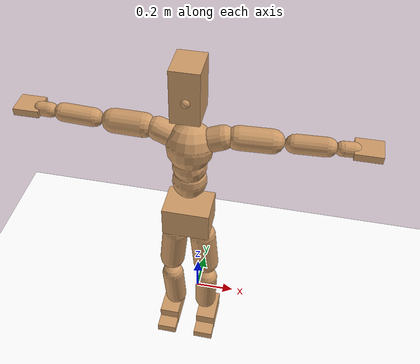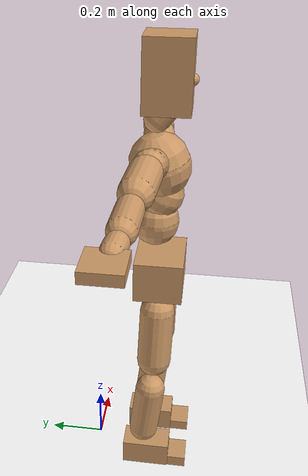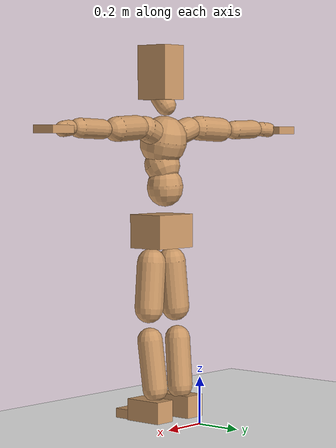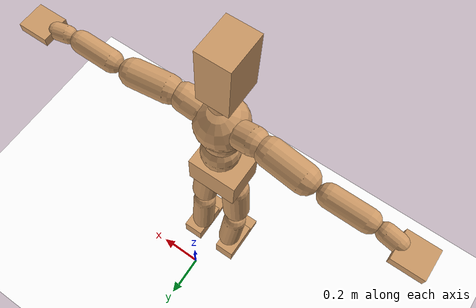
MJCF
<mujoco model="humanoid">
  <option integrator="implicitfast" />

  <visual>
    <global offwidth="1280" offheight="960" />
    <headlight active="1" ambient="0.34 0.34 0.34" diffuse="0.5 0.5 0.5" />
  </visual>

  <default>
    <joint damping="2" stiffness="2" armature="0.01" limited="true" solimplimit="0 .99 .01" />
    <geom condim="1" friction="0.7 0.005 0.0001" solimp=".99 .99 .003" solref="0.015 1" margin="0.001" rgba="0.8 0.6 .4 1" />
    <default class="smplcontact">
      <geom condim="3" friction="1. 0.005 0.0001" solref="0.015 1" solimp="0.98 0.98 0.001" priority="1" />
    </default>
    <default class="stiff_medium">
      <joint stiffness="10" />
    </default>
    <default class="stiff_medium_higher">
      <joint stiffness="50" />
    </default>
    <default class="stiff_high">
      <joint stiffness="100" />
    </default>
  </default>

  <asset>
    <texture type="skybox" builtin="gradient" rgb1="0.99 0.99 0.99" rgb2="0.608 0.828 0.892" width="100" />
    <texture builtin="flat" height="1278" mark="cross" markrgb="1 1 1" name="texgeom" random="0.01" rgb1="0.8 0.6 0.4" rgb2="0.8 0.6 0.4" type="cube" width="127" />
    <texture name="texplane" type="2d" builtin="checker" markrgb="1 1 1" rgb1="0.756 0.772 0.76" rgb2="0.6 0.6 0.6" width="100" height="100" />
    <material name="MatPlane" reflectance="0.5" texture="texplane" texrepeat="1 1" texuniform="true" />
    <material name="geom" texture="texgeom" texuniform="true" />
  </asset>

  <worldbody>
    <light name="tracking_light" pos="0 0 7" dir="0 0 -1" directional="true" cutoff="100" exponent="1" diffuse="1 1 1" specular="0.1 0.1 0.1" mode="trackcom" />
    <camera name="back" pos="0 3 2.4" xyaxes="-1 0 0 0 -1 2" mode="trackcom" />
    <camera name="side" pos="-3 0 2.4" xyaxes="0 -1 0 1 0 2" mode="trackcom" />
    <camera name="front_side" pos="-2.8 -2.8 0.8" xyaxes="0.5 -0.5 0 0.1 0.1 1" mode="trackcom" />
    <geom condim="3" name="floor" pos="0 0 0" rgba="1 1 1 1" size="100 100 .2" type="plane" material="MatPlane" />
    <body name="Pelvis" pos="-0.0018 -0.2233 0.820076" euler="90 0 0">
      <site name="Pelvis" size="0.01" />
      <freejoint name="Pelvis" />
      <geom type="box" pos="-0.0000 -0.0121 -0.0055" size="0.1069 0.0722 0.083" quat="1.0000 0.0000 0.0000 0.0000" density="3165.830099" name="Pelvis" />
      <body name="L_Hip" pos="0.0603816 -0.0794083 -0.00590784">
        <joint name="L_Hip_x" type="hinge" pos="0 0 0" axis="1 0 0" stiffness="7.9257274489795915" range="-160.0 22.92" class="stiff_medium" damping="11.194933109876" armature="0.007027831725723564"/>
        <joint name="L_Hip_y" type="hinge" pos="0 0 0" axis="0 1 0" stiffness="7.948422040816326" range="-70.0 70.0" class="stiff_medium" damping="8.124462947868727" armature="0.008304402792445667"/>
        <joint name="L_Hip_z" type="hinge" pos="0 0 0" axis="0 0 1" stiffness="7.946478979591838" range="-28.65 90.0" class="stiff_medium" damping="7.472027083466815" armature="0.007025902777751929"/>
        <geom type="capsule" density="2040.816327" fromto="0.00599472 -0.06516 -0.00078192 0.0238051 -0.260814 -0.00312768" size="0.0615" name="L_Hip" />
        <body name="L_Knee" pos="0.0297998 -0.325974 -0.0039096">
          <joint name="L_Knee_x" type="hinge" pos="0 0 0" axis="1 0 0" range="-5.16 171.89" damping="6.104279376796089" armature="0.007227308350447203" stiffness="1.6111732448979592"/>
          <joint name="L_Knee_y" type="hinge" pos="0 0 0" axis="0 1 0" range="-4.58 6.88" damping="6.602083903134402" armature="0.008535979043657613" stiffness="1.5957276122448976"/>
          <joint name="L_Knee_z" type="hinge" pos="0 0 0" axis="0 0 1" range="-6.88 4.58" damping="6.113074394979376" armature="0.007217627063150271" stiffness="1.617986693877551"/>
          <geom type="capsule" density="1234.567901" fromto="-0.00234576 -0.0691565 -0.00755856 -0.00946992 -0.276626 -0.030408" size="0.0541" name="L_Knee" />
          <body name="L_Ankle" pos="-0.0118157 -0.345782 -0.0379666">
            <joint name="L_Ankle_x" type="hinge" pos="0 0 0" axis="1 0 0" range="-45.84 45.84" class="stiff_medium" damping="5.121809844065085" armature="0.00838734123727994" stiffness="8.688005510204082"/>
            <joint name="L_Ankle_y" type="hinge" pos="0 0 0" axis="0 1 0" range="-74.48 22.92" class="stiff_medium" damping="2.5700474746041873" armature="0.008447336635025546" stiffness="8.688003367346939"/>
            <joint name="L_Ankle_z" type="hinge" pos="0 0 0" axis="0 0 1" range="-4.58 4.58" class="stiff_medium" damping="5.258228048533042" armature="0.00884008914086187" stiffness="8.687997551020409"/>
            <geom type="box" pos="0.020243 -0.0207643 0.021025" size="0.0483 0.0464 0.085" quat="1.0000 0.0000 0.0000 0.0000" density="449.071558" name="L_Ankle" class="smplcontact" />
            <body name="L_Toe" pos="0.0229363 -0.048479 0.103648">
              <joint name="L_Toe_x" type="hinge" pos="0 0 0" axis="1 0 0" range="-91.67 22.92" armature="0.009067830202276462" damping="1.7751767308970168" stiffness="1.7376000408163264"/>
              <joint name="L_Toe_y" type="hinge" pos="0 0 0" axis="0 1 0" range="-4.58 4.58" armature="0.009343211053933303" damping="1.8019303461598588" stiffness="1.7376001428571428"/>
              <joint name="L_Toe_z" type="hinge" pos="0 0 0" axis="0 0 1" range="-4.58 4.58" armature="0.009900016536699459" damping="1.8548460170142955" stiffness="1.7376000000000003"/>
              <geom type="box" pos="-0.0026064 0.0047784 0.0215462" size="0.0478 0.02 0.0496" quat="1.0000 0.0000 0.0000 0.0000" density="423.206892" name="L_Toe" class="smplcontact" />
            </body>
          </body>
        </body>
      </body>
      <body name="R_Hip" pos="-0.0588178 -0.0786264 -0.00373584">
        <joint name="R_Hip_x" type="hinge" pos="0 0 0" axis="1 0 0" stiffness="7.9257274489795915" range="-160.0 22.92" class="stiff_medium" damping="11.194933109876" armature="0.007027831725723564"/>
        <joint name="R_Hip_y" type="hinge" pos="0 0 0" axis="0 1 0" stiffness="7.948422040816326" range="-70.0 70.0" class="stiff_medium" damping="8.124462947868727" armature="0.008304402792445667"/>
        <joint name="R_Hip_z" type="hinge" pos="0 0 0" axis="0 0 1" stiffness="7.946478979591838" range="-90.0 28.65" class="stiff_medium" damping="7.472027083466815" armature="0.007025902777751929"/>
        <geom type="capsule" density="2040.816327" fromto="-0.00668976 -0.0664632 -0.00156384 -0.0265853 -0.26594 -0.00616848" size="0.0606" name="R_Hip" />
        <body name="R_Knee" pos="-0.033275 -0.332403 -0.00773232">
          <joint name="R_Knee_x" type="hinge" pos="0 0 0" axis="1 0 0" range="-5.16 171.89" damping="6.104279376796089" armature="0.007227308350447203" stiffness="1.6111732448979592"/>
          <joint name="R_Knee_y" type="hinge" pos="0 0 0" axis="0 1 0" range="-6.88 4.58" damping="6.602083903134402" armature="0.008535979043657613" stiffness="1.5957276122448976"/>
          <joint name="R_Knee_z" type="hinge" pos="0 0 0" axis="0 0 1" range="-4.58 6.88" damping="6.113074394979376" armature="0.007217627063150271" stiffness="1.617986693877551"/>
          <geom type="capsule" density="1234.567901" fromto="0.00278016 -0.0692434 -0.0073848 0.0109469 -0.276887 -0.0293654" size="0.0541" name="R_Knee" />
          <body name="R_Ankle" pos="0.013727 -0.34613 -0.0367502">
            <joint name="R_Ankle_x" type="hinge" pos="0 0 0" axis="1 0 0" range="-45.84 45.84" class="stiff_medium" damping="5.121809844065085" armature="0.00838734123727994" stiffness="8.688005510204082"/>
            <joint name="R_Ankle_y" type="hinge" pos="0 0 0" axis="0 1 0" range="-22.92 74.48" class="stiff_medium" damping="2.5700474746041873" armature="0.008447336635025546" stiffness="8.688003367346939"/>
            <joint name="R_Ankle_z" type="hinge" pos="0 0 0" axis="0 0 1" range="-4.58 4.58" class="stiff_medium" damping="5.258228048533042" armature="0.00884008914086187" stiffness="8.687997551020409"/>
            <geom type="box" pos="-0.0184186 -0.0151171 0.0222413" size="0.0483 0.0478 0.0865" quat="1.0000 0.0000 0.0000 0.0000" density="434.700981" name="R_Ankle" class="smplcontact" />
            <body name="R_Toe" pos="-0.0220675 -0.0417893 0.107123">
              <joint name="R_Toe_x" type="hinge" pos="0 0 0" axis="1 0 0" range="-91.67 22.92" armature="0.009067830202276462" damping="1.7751767308970168" stiffness="1.7376000408163264"/>
              <joint name="R_Toe_y" type="hinge" pos="0 0 0" axis="0 1 0" range="-4.58 4.58" armature="0.009343211053933303" damping="1.8019303461598588" stiffness="1.7376001428571428"/>
              <joint name="R_Toe_z" type="hinge" pos="0 0 0" axis="0 0 1" range="-4.58 4.58" armature="0.009900016536699459" damping="1.8548460170142955" stiffness="1.7376000000000003"/>
              <geom type="box" pos="0.00364896 0.0039096 0.0197218" size="0.0479 0.0216 0.0493" quat="1.0000 0.0000 0.0000 0.0000" density="407.384095" name="R_Toe" class="smplcontact" />
            </body>
          </body>
        </body>
      </body>
      <body name="Torso" pos="-0.0025 0.109 -0.0267">
        <joint name="Torso_x" type="hinge" pos="0 0 0" axis="1 0 0" range="-25.78 57.3" class="stiff_medium" damping="14.338223428883952" armature="0.009488836912503304" stiffness="9.629310408163265"/>
        <joint name="Torso_y" type="hinge" pos="0 0 0" axis="0 1 0" range="-57.3 57.3" class="stiff_high" damping="16.858804586105343" armature="0.007339579075137647" stiffness="96.81048775510205"/>
        <joint name="Torso_z" type="hinge" pos="0 0 0" axis="0 0 1" range="-34.38 34.38" class="stiff_high" damping="18.475676911789126" armature="0.008754075467091468" stiffness="97.4833489361702"/>
        <geom type="capsule" density="2040.816327" fromto="0.0025 0.0608 0.0005 0.003 0.0743 0.0006" size="0.0769" name="Torso" />
        <body name="Spine" pos="0.0055 0.1352 0.0011">
          <joint name="Spine_x" type="hinge" pos="0 0 0" axis="1 0 0" stiffness="9.559158979591837" range="-25.78 57.3" class="stiff_medium" damping="14.223612967909089" armature="0.0094062745381584"/>
          <joint name="Spine_y" type="hinge" pos="0 0 0" axis="0 1 0" stiffness="9.549693265306123" range="-57.3 57.3" class="stiff_high" damping="6.68911891177774" armature="0.007320966786057995"/>
          <joint name="Spine_z" type="hinge" pos="0 0 0" axis="0 0 1" stiffness="18.948488163265306" range="-34.38 34.38" class="stiff_high" damping="10.608262056788341" armature="0.008248622301087884"/>
          <geom type="capsule" density="2040.816327" fromto="0.0007 0.0238 0.0114 0.0008 0.0291 0.014" size="0.0755" name="Spine" />
          <body name="Chest" pos="0.0015 0.0529 0.0254">
            <joint name="Chest_x" type="hinge" pos="0 0 0" axis="1 0 0" stiffness="9.380547291666666" range="-25.78 57.3" class="stiff_medium" damping="14.055977791143933" armature="0.009360766868434253"/>
            <joint name="Chest_y" type="hinge" pos="0 0 0" axis="0 1 0" stiffness="8.848325" range="-57.3 57.3" class="stiff_high" damping="6.435989029455116" armature="0.00731458263062264"/>
            <joint name="Chest_z" type="hinge" pos="0 0 0" axis="0 0 1" stiffness="18.89043632653061" range="-34.38 34.38" class="stiff_high" damping="10.449236878664882" armature="0.008027765233151303"/>
            <geom type="capsule" density="2040.816327" fromto="-0.0009 0.0682 -0.0173 -0.001 0.0833 -0.0212" size="0.1002" name="Chest" />
            <body name="Neck" pos="-0.0028 0.2139 -0.0429">
              <joint name="Neck_x" type="hinge" pos="0 0 0" axis="1 0 0" range="-28.65 57.3" class="stiff_medium_higher" damping="10.000000000000004" armature="0.010000000000000009" stiffness="50.0"/>
              <joint name="Neck_y" type="hinge" pos="0 0 0" axis="0 1 0" range="-40.11 40.11" class="stiff_medium_higher" damping="10.0" armature="0.010000000000000002" stiffness="50.0"/>
              <joint name="Neck_z" type="hinge" pos="0 0 0" axis="0 0 1" range="-40.11 40.11" class="stiff_medium_higher" damping="9.999999999999996" armature="0.009999999999999992" stiffness="50.0"/>
              <geom type="capsule" density="1000" fromto="0.001 0.013 0.0103 0.0041 0.052 0.0411" size="0.0436" name="Neck" />
              <body name="Head" pos="0.0052 0.065 0.0513">
                <joint name="Head_x" type="hinge" pos="0 0 0" axis="1 0 0" range="-28.65 57.3" class="stiff_medium_higher" damping="1.9999999999999978" armature="0.009999999999999978" stiffness="50.0"/>
                <joint name="Head_y" type="hinge" pos="0 0 0" axis="0 1 0" range="-40.11 40.11" class="stiff_medium_higher" damping="2.0" armature="0.01" stiffness="50.0"/>
                <joint name="Head_z" type="hinge" pos="0 0 0" axis="0 0 1" range="-40.11 40.11" class="stiff_medium_higher" damping="1.999999999999996" armature="0.009999999999999962" stiffness="50.0"/>
                <geom type="box" pos="-0.0042 0.0876 -0.0116" size="0.0606 0.1154 0.076" quat="1.0000 0.0000 0.0000 0.0000" density="1018.069894" name="Head" />
                <geom type="capsule" name="nose" size="0.02 0.01" pos="0 0.07 0.05" quat="1 0 0 0" mass="0" contype="0" conaffinity="0" />
              </body>
            </body>
            <body name="L_Thorax" pos="0.069344 0.107096 -0.030008">
              <joint name="L_Thorax_x" type="hinge" pos="0 0 0" axis="1 0 0" range="-10.89 4.58" class="stiff_medium_higher" damping="16.28595730924163" armature="0.00812965302933484" stiffness="40.78163061224489"/>
              <joint name="L_Thorax_y" type="hinge" pos="0 0 0" axis="0 1 0" range="-28.65 17.19" class="stiff_medium_higher" damping="15.34519157666308" armature="0.007241438242780019" stiffness="40.647122959183676"/>
              <joint name="L_Thorax_z" type="hinge" pos="0 0 0" axis="0 0 1" range="-31.51 40.11" class="stiff_medium_higher" damping="15.344622144789675" armature="0.007240635436470586" stiffness="40.64861275510204"/>
              <geom type="capsule" density="1000" fromto="0.016016 0.005368 -0.001584 0.064064 0.021472 -0.006248" size="0.0521" name="L_Thorax" />
              <body name="L_Shoulder" pos="0.08008 0.02684 -0.007832">
                <joint name="L_Shoulder_x" type="hinge" pos="0 0 0" axis="1 0 0" range="-97.4 97.4" class="stiff_medium" damping="4.993521737815648" armature="0.008471579736708115" stiffness="8.176114897959184"/>
                <joint name="L_Shoulder_y" type="hinge" pos="0 0 0" axis="0 1 0" range="-108.86 80.21" class="stiff_medium" damping="4.615609698675886" armature="0.007270457455457674" stiffness="8.139428571428573"/>
                <joint name="L_Shoulder_z" type="hinge" pos="0 0 0" axis="0 0 1" range="-97.4 85.94" class="stiff_medium" damping="4.615884825523217" armature="0.0072693921132647" stiffness="8.141591938775512"/>
                <geom type="capsule" density="1000" fromto="0.045672 -0.002288 -0.00484 0.182776 -0.008976 -0.01936" size="0.0517" name="L_Shoulder" />
                <body name="L_Elbow" pos="0.228448 -0.011264 -0.0242">
                  <joint name="L_Elbow_x" type="hinge" pos="0 0 0" axis="1 0 0" range="-17.19 4.58" damping="4.316380205566615" armature="0.009030460135364125" stiffness="1.6505150612244899"/>
                  <joint name="L_Elbow_y" type="hinge" pos="0 0 0" axis="0 1 0" range="-180.0 17.19" damping="3.910192223639136" armature="0.007412397334531754" stiffness="1.6501655306122447"/>
                  <joint name="L_Elbow_z" type="hinge" pos="0 0 0" axis="0 0 1" range="-100.84 4.58" damping="3.9094213106866036" armature="0.007406805547025726" stiffness="1.6507602244897959"/>
                  <geom type="capsule" density="1000" fromto="0.043824 0.001584 -0.000176 0.175472 0.006336 -0.000792" size="0.0405" name="L_Elbow" />
                  <body name="L_Wrist" pos="0.219296 0.00792 -0.001056">
                    <joint name="L_Wrist_x" type="hinge" pos="0 0 0" axis="1 0 0" range="-180.0 22.92" armature="0.00922199319511475" damping="1.7820260504801324" stiffness="1.7217627346938773"/>
                    <joint name="L_Wrist_y" type="hinge" pos="0 0 0" axis="0 1 0" range="-17.19 17.19" armature="0.007918405910442903" damping="1.6485862311213464" stiffness="1.7161513265306123"/>
                    <joint name="L_Wrist_z" type="hinge" pos="0 0 0" axis="0 0 1" range="-22.92 22.92" armature="0.007844996652366484" damping="1.6420083459313382" stiffness="1.7184146326530612"/>
                    <geom type="capsule" density="1000" fromto="0.014784 -0.001408 -0.00264 0.059136 -0.00572 -0.01056" size="0.0318" name="L_Wrist" class="smplcontact" />
                    <body name="L_Hand" pos="0.07392 -0.007216 -0.013112">
                      <joint name="L_Hand_x" type="hinge" pos="0 0 0" axis="1 0 0" range="-17.19 17.19" armature="0.00990171474186541" damping="1.8669235627461092" stiffness="1.7600000000000002"/>
                      <joint name="L_Hand_y" type="hinge" pos="0 0 0" axis="0 1 0" range="-51.57 51.57" armature="0.008811375401946531" damping="1.7611371728190792" stiffness="1.7600000000000002"/>
                      <joint name="L_Hand_z" type="hinge" pos="0 0 0" axis="0 0 1" range="-91.67 91.67" armature="0.00852073055349595" damping="1.7318479017600175" stiffness="1.7600000000000002"/>
                      <geom type="box" pos="0.043384 0.00088 -0.005104" size="0.0585 0.0158 0.0538" quat="1.0000 0.0000 0.0000 0.0000" density="400.552564" name="L_Hand" class="smplcontact" />
                    </body>
                  </body>
                </body>
              </body>
            </body>
            <body name="R_Thorax" pos="-0.071984 0.104544 -0.033968">
              <joint name="R_Thorax_x" type="hinge" pos="0 0 0" axis="1 0 0" range="-10.89 4.58" class="stiff_medium_higher" damping="16.28595730924163" armature="0.00812965302933484" stiffness="40.78163061224489"/>
              <joint name="R_Thorax_y" type="hinge" pos="0 0 0" axis="0 1 0" range="-17.19 28.65" class="stiff_medium_higher" damping="15.34519157666308" armature="0.007241438242780019" stiffness="40.647122959183676"/>
              <joint name="R_Thorax_z" type="hinge" pos="0 0 0" axis="0 0 1" range="-40.11 31.51" class="stiff_medium_higher" damping="15.344622144789675" armature="0.007240635436470586" stiffness="40.64861275510204"/>
              <geom type="capsule" density="1000" fromto="-0.016896 0.00572 -0.001584 -0.067584 0.02288 -0.006424" size="0.0511" name="R_Thorax" />
              <body name="R_Shoulder" pos="-0.08448 0.028688 -0.008008">
                <joint name="R_Shoulder_x" type="hinge" pos="0 0 0" axis="1 0 0" range="-97.4 97.4" class="stiff_medium" damping="4.993521737815648" armature="0.008471579736708115" stiffness="8.176114897959184"/>
                <joint name="R_Shoulder_y" type="hinge" pos="0 0 0" axis="0 1 0" range="-80.21 108.86" class="stiff_medium" damping="4.615609698675886" armature="0.007270457455457674" stiffness="8.139428571428573"/>
                <joint name="R_Shoulder_z" type="hinge" pos="0 0 0" axis="0 0 1" range="-85.94 97.4" class="stiff_medium" damping="4.615884825523217" armature="0.0072693921132647" stiffness="8.141591938775512"/>
                <geom type="capsule" density="1000" fromto="-0.044616 -0.002376 -0.003784 -0.17864 -0.009416 -0.015048" size="0.0531" name="R_Shoulder" />
                <body name="R_Elbow" pos="-0.223256 -0.011704 -0.018832">
                  <joint name="R_Elbow_x" type="hinge" pos="0 0 0" axis="1 0 0" range="-17.19 4.58" damping="4.316380205566615" armature="0.009030460135364125" stiffness="1.6505150612244899"/>
                  <joint name="R_Elbow_y" type="hinge" pos="0 0 0" axis="0 1 0" range="-17.19 180.0" damping="3.910192223639136" armature="0.007412397334531754" stiffness="1.6501655306122447"/>
                  <joint name="R_Elbow_z" type="hinge" pos="0 0 0" axis="0 0 1" range="-4.58 100.84" damping="3.9094213106866036" armature="0.007406805547025726" stiffness="1.6507602244897959"/>
                  <geom type="capsule" density="1000" fromto="-0.044968 0.001408 -0.000968 -0.179696 0.005456 -0.003872" size="0.0408" name="R_Elbow" />
                  <body name="R_Wrist" pos="-0.224664 0.006864 -0.004928">
                    <joint name="R_Wrist_x" type="hinge" pos="0 0 0" axis="1 0 0" range="-180.0 22.92" armature="0.00922199319511475" damping="1.7820260504801324" stiffness="1.7217627346938773"/>
                    <joint name="R_Wrist_y" type="hinge" pos="0 0 0" axis="0 1 0" range="-17.19 17.19" armature="0.007918405910442903" damping="1.6485862311213464" stiffness="1.7161513265306123"/>
                    <joint name="R_Wrist_z" type="hinge" pos="0 0 0" axis="0 0 1" range="-22.92 22.92" armature="0.007844996652366484" damping="1.6420083459313382" stiffness="1.7184146326530612"/>
                    <geom type="capsule" density="1000" fromto="-0.014872 -0.001056 -0.001848 -0.059576 -0.004312 -0.007304" size="0.0326" name="R_Wrist" class="smplcontact" />
                    <body name="R_Hand" pos="-0.074448 -0.005368 -0.009064">
                      <joint name="R_Hand_x" type="hinge" pos="0 0 0" axis="1 0 0" range="-17.19 17.19" armature="0.00990171474186541" damping="1.8669235627461092" stiffness="1.7600000000000002"/>
                      <joint name="R_Hand_y" type="hinge" pos="0 0 0" axis="0 1 0" range="-51.57 51.57" armature="0.008811375401946531" damping="1.7611371728190792" stiffness="1.7600000000000002"/>
                      <joint name="R_Hand_z" type="hinge" pos="0 0 0" axis="0 0 1" range="-91.67 91.67" armature="0.00852073055349595" damping="1.7318479017600175" stiffness="1.7600000000000002"/>
                      <geom type="box" pos="-0.040656 -0.000792 -0.006952" size="0.0569 0.0164 0.0546" quat="1.0000 0.0000 0.0000 0.0000" density="403.679611" name="R_Hand" class="smplcontact" />
                    </body>
                  </body>
                </body>
              </body>
            </body>
          </body>
        </body>
      </body>
    </body>
  </worldbody>
  <actuator>
    <general name="L_Hip_x" joint="L_Hip_x" biastype="affine" gainprm="227.7299775933214" biasprm="-170.66053645578668 -142.66309408163264 -1.4926577479834666" ctrllimited="true" ctrlrange="-1 1" forcerange="-285.3261881632653 285.3261881632653" />
    <general name="L_Hip_y" joint="L_Hip_y" biastype="affine" gainprm="174.79493003741834" biasprm="0.0 -143.07159673469388 -1.6248925895737454" ctrllimited="true" ctrlrange="-1 1" forcerange="-286.14319346938777 286.14319346938777" />
    <general name="L_Hip_z" joint="L_Hip_z" biastype="affine" gainprm="148.10248940621568" biasprm="76.57891045150721 -143.03662163265307 -1.4944054166933631" ctrllimited="true" ctrlrange="-1 1" forcerange="-286.07324326530613 286.07324326530613" />
    <general name="L_Knee_x" joint="L_Knee_x" biastype="affine" gainprm="224.0412844454326" biasprm="210.9822273684664 -145.00559204081634 -1.5260698441990221" ctrllimited="true" ctrlrange="-1 1" forcerange="-290.0111840816327 290.0111840816327" />
    <general name="L_Knee_y" joint="L_Knee_y" biastype="affine" gainprm="14.362606401869398" biasprm="2.8825475326613974 -143.6154851020408 -1.6505209757836006" ctrllimited="true" ctrlrange="-1 1" forcerange="-287.2309702040816 287.2309702040816" />
    <general name="L_Knee_z" joint="L_Knee_z" biastype="affine" gainprm="14.562952893277867" biasprm="-2.922756688877757 -145.61880244897958 -1.528268598744844" ctrllimited="true" ctrlrange="-1 1" forcerange="-291.23760489795916 291.23760489795916" />
    <general name="L_Ankle_x" joint="L_Ankle_x" biastype="affine" gainprm="62.55824746168938" biasprm="0.0 -78.19204959183674 -1.707269948021695" ctrllimited="true" ctrlrange="-1 1" forcerange="-156.38409918367347 156.38409918367347" />
    <general name="L_Ankle_y" joint="L_Ankle_y" biastype="affine" gainprm="66.461297992092" biasprm="-35.18218197610127 -78.19203030612245 -1.7133649830694582" ctrllimited="true" ctrlrange="-1 1" forcerange="-156.3840606122449 156.3840606122449" />
    <general name="L_Ankle_z" joint="L_Ankle_z" biastype="affine" gainprm="6.250360185278429" biasprm="0.0 -78.19197795918367 -1.7527426828443475" ctrllimited="true" ctrlrange="-1 1" forcerange="-156.38395591836735 156.38395591836735" />
    <general name="L_Toe_x" joint="L_Toe_x" biastype="affine" gainprm="62.55275042327045" biasprm="-37.529466721353025 -62.55360146938775 -0.7100706923588067" ctrllimited="true" ctrlrange="-1 1" forcerange="-125.1072029387755 125.1072029387755" />
    <general name="L_Toe_y" joint="L_Toe_y" biastype="affine" gainprm="5.000289968807743" biasprm="0.0 -62.553605142857144 -0.7207721384639436" ctrllimited="true" ctrlrange="-1 1" forcerange="-125.10721028571429 125.10721028571429" />
    <general name="L_Toe_z" joint="L_Toe_z" biastype="affine" gainprm="5.000289557707905" biasprm="0.0 -62.55360000000001 -0.7419384068057182" ctrllimited="true" ctrlrange="-1 1" forcerange="-125.10720000000002 125.10720000000002" />
    <general name="R_Hip_x" joint="R_Hip_x" biastype="affine" gainprm="227.7299775933214" biasprm="-170.66053645578668 -142.66309408163264 -1.4926577479834666" ctrllimited="true" ctrlrange="-1 1" forcerange="-285.3261881632653 285.3261881632653" />
    <general name="R_Hip_y" joint="R_Hip_y" biastype="affine" gainprm="174.79493003741834" biasprm="0.0 -143.07159673469388 -1.6248925895737454" ctrllimited="true" ctrlrange="-1 1" forcerange="-286.14319346938777 286.14319346938777" />
    <general name="R_Hip_z" joint="R_Hip_z" biastype="affine" gainprm="148.10248940621568" biasprm="-76.57891045150721 -143.03662163265307 -1.4944054166933631" ctrllimited="true" ctrlrange="-1 1" forcerange="-286.07324326530613 286.07324326530613" />
    <general name="R_Knee_x" joint="R_Knee_x" biastype="affine" gainprm="224.0412844454326" biasprm="210.9822273684664 -145.00559204081634 -1.5260698441990221" ctrllimited="true" ctrlrange="-1 1" forcerange="-290.0111840816327 290.0111840816327" />
    <general name="R_Knee_y" joint="R_Knee_y" biastype="affine" gainprm="14.362606401869398" biasprm="-2.8825475326613974 -143.6154851020408 -1.6505209757836006" ctrllimited="true" ctrlrange="-1 1" forcerange="-287.2309702040816 287.2309702040816" />
    <general name="R_Knee_z" joint="R_Knee_z" biastype="affine" gainprm="14.562952893277867" biasprm="2.922756688877757 -145.61880244897958 -1.528268598744844" ctrllimited="true" ctrlrange="-1 1" forcerange="-291.23760489795916 291.23760489795916" />
    <general name="R_Ankle_x" joint="R_Ankle_x" biastype="affine" gainprm="62.55824746168938" biasprm="0.0 -78.19204959183674 -1.707269948021695" ctrllimited="true" ctrlrange="-1 1" forcerange="-156.38409918367347 156.38409918367347" />
    <general name="R_Ankle_y" joint="R_Ankle_y" biastype="affine" gainprm="66.461297992092" biasprm="35.18218197610127 -78.19203030612245 -1.7133649830694582" ctrllimited="true" ctrlrange="-1 1" forcerange="-156.3840606122449 156.3840606122449" />
    <general name="R_Ankle_z" joint="R_Ankle_z" biastype="affine" gainprm="6.250360185278429" biasprm="0.0 -78.19197795918367 -1.7527426828443475" ctrllimited="true" ctrlrange="-1 1" forcerange="-156.38395591836735 156.38395591836735" />
    <general name="R_Toe_x" joint="R_Toe_x" biastype="affine" gainprm="62.55275042327045" biasprm="-37.529466721353025 -62.55360146938775 -0.7100706923588067" ctrllimited="true" ctrlrange="-1 1" forcerange="-125.1072029387755 125.1072029387755" />
    <general name="R_Toe_y" joint="R_Toe_y" biastype="affine" gainprm="5.000289968807743" biasprm="0.0 -62.553605142857144 -0.7207721384639436" ctrllimited="true" ctrlrange="-1 1" forcerange="-125.10721028571429 125.10721028571429" />
    <general name="R_Toe_z" joint="R_Toe_z" biastype="affine" gainprm="5.000289557707905" biasprm="0.0 -62.55360000000001 -0.7419384068057182" ctrllimited="true" ctrlrange="-1 1" forcerange="-125.10720000000002 125.10720000000002" />
    <general name="Torso_x" joint="Torso_x" biastype="affine" gainprm="167.55225927819825" biasprm="63.568213919701584 -231.10344979591838 -3.8235262477023872" ctrllimited="true" ctrlrange="-1 1" forcerange="-346.65517469387754 346.65517469387754" />
    <general name="Torso_y" joint="Torso_y" biastype="affine" gainprm="232.36228548111114" biasprm="0.0 -232.3451706122449 -3.3717609172210685" ctrllimited="true" ctrlrange="-1 1" forcerange="-348.51775591836736 348.51775591836736" />
    <general name="Torso_z" joint="Torso_z" biastype="affine" gainprm="140.38636276140892" biasprm="0.0 -233.96003744680849 -3.6951353823578255" ctrllimited="true" ctrlrange="-1 1" forcerange="-350.9400561702127 350.9400561702127" />
    <general name="Spine_x" joint="Spine_x" biastype="affine" gainprm="166.331607969796" biasprm="63.1051069235432 -229.4198155102041 -3.7929634581090905" ctrllimited="true" ctrlrange="-1 1" forcerange="-344.12972326530615 344.12972326530615" />
    <general name="Spine_y" joint="Spine_y" biastype="affine" gainprm="229.20952101629732" biasprm="0.0 -229.19263836734694 -3.34455945588887" ctrllimited="true" ctrlrange="-1 1" forcerange="-343.7889575510204 343.7889575510204" />
    <general name="Spine_z" joint="Spine_z" biastype="affine" gainprm="136.43916433411636" biasprm="0.0 -227.3818579591837 -3.5360873522627805" ctrllimited="true" ctrlrange="-1 1" forcerange="-341.07278693877555 341.07278693877555" />
    <general name="Chest_x" joint="Chest_x" biastype="affine" gainprm="163.22372271354917" biasprm="61.92599590672928 -225.133135 -3.748260744305049" ctrllimited="true" ctrlrange="-1 1" forcerange="-337.6997025 337.6997025" />
    <general name="Chest_y" joint="Chest_y" biastype="affine" gainprm="212.37544271863229" biasprm="0.0 -212.3598 -3.217994514727558" ctrllimited="true" ctrlrange="-1 1" forcerange="-318.5397 318.5397" />
    <general name="Chest_z" joint="Chest_z" biastype="affine" gainprm="136.0211603211367" biasprm="0.0 -226.68523591836734 -3.4830789595549607" ctrllimited="true" ctrlrange="-1 1" forcerange="-340.02785387755097 340.02785387755097" />
    <general name="Neck_x" joint="Neck_x" biastype="affine" gainprm="27.00198885760427" biasprm="9.000662952534757 -36.0 -0.8000000000000004" ctrllimited="true" ctrlrange="-1 1" forcerange="-72.0 72.0" />
    <general name="Neck_y" joint="Neck_y" biastype="affine" gainprm="25.20185626709732" biasprm="0.0 -36.0 -0.8" ctrllimited="true" ctrlrange="-1 1" forcerange="-72.0 72.0" />
    <general name="Neck_z" joint="Neck_z" biastype="affine" gainprm="25.20185626709732" biasprm="0.0 -36.0 -0.7999999999999997" ctrllimited="true" ctrlrange="-1 1" forcerange="-72.0 72.0" />
    <general name="Head_x" joint="Head_x" biastype="affine" gainprm="18.001325905069514" biasprm="6.000441968356505 -24.0 -0.7999999999999992" ctrllimited="true" ctrlrange="-1 1" forcerange="-48.0 48.0" />
    <general name="Head_y" joint="Head_y" biastype="affine" gainprm="16.801237511398213" biasprm="0.0 -24.0 -0.8" ctrllimited="true" ctrlrange="-1 1" forcerange="-48.0 48.0" />
    <general name="Head_z" joint="Head_z" biastype="affine" gainprm="16.801237511398213" biasprm="0.0 -24.0 -0.7999999999999985" ctrllimited="true" ctrlrange="-1 1" forcerange="-48.0 48.0" />
    <general name="L_Thorax_x" joint="L_Thorax_x" biastype="affine" gainprm="13.213367496167017" biasprm="-5.38955067232152 -97.87591346938774 -1.3028765847393307" ctrllimited="true" ctrlrange="-1 1" forcerange="-195.75182693877548 195.75182693877548" />
    <general name="L_Thorax_y" joint="L_Thorax_y" biastype="affine" gainprm="39.024112399557275" biasprm="-9.756028099889319 -97.55309510204083 -1.2276153261330465" ctrllimited="true" ctrlrange="-1 1" forcerange="-195.10619020408166 195.10619020408166" />
    <general name="L_Thorax_z" joint="L_Thorax_z" biastype="affine" gainprm="60.97315377002279" biasprm="7.321545970709242 -97.5566706122449 -1.2275697715831742" ctrllimited="true" ctrlrange="-1 1" forcerange="-195.1133412244898 195.1133412244898" />
    <general name="L_Shoulder_x" joint="L_Shoulder_x" biastype="affine" gainprm="66.7151624356745" biasprm="0.0 -39.24535151020408 -1.3316057967508395" ctrllimited="true" ctrlrange="-1 1" forcerange="-78.49070302040816 78.49070302040816" />
    <general name="L_Shoulder_y" joint="L_Shoulder_y" biastype="affine" gainprm="64.46220394220634" biasprm="-9.768033759688008 -39.069257142857154 -1.2308292529802365" ctrllimited="true" ctrlrange="-1 1" forcerange="-78.13851428571431 78.13851428571431" />
    <general name="L_Shoulder_z" joint="L_Shoulder_z" biastype="affine" gainprm="62.525211262973926" biasprm="-3.908251996692935 -39.079641306122454 -1.2309026201395246" ctrllimited="true" ctrlrange="-1 1" forcerange="-78.15928261224491 78.15928261224491" />
    <general name="L_Elbow_x" joint="L_Elbow_x" biastype="affine" gainprm="11.288280522368174" biasprm="-6.538595194628512 -59.41854220408163 -0.6906208328906585" ctrllimited="true" ctrlrange="-1 1" forcerange="-118.83708440816326 118.83708440816326" />
    <general name="L_Elbow_y" joint="L_Elbow_y" biastype="affine" gainprm="102.22621260137244" biasprm="-84.40311209305466 -59.40595910204081 -0.6256307557822618" ctrllimited="true" ctrlrange="-1 1" forcerange="-118.81191820408162 118.81191820408162" />
    <general name="L_Elbow_z" joint="L_Elbow_z" biastype="affine" gainprm="54.670982718153496" biasprm="-49.92059188436213 -59.42736808163265 -0.6255074097098566" ctrllimited="true" ctrlrange="-1 1" forcerange="-118.8547361632653 118.8547361632653" />
    <general name="L_Wrist_x" joint="L_Wrist_x" biastype="affine" gainprm="18.29349895017875" biasprm="-14.160964001054989 -10.330576408163264 -0.712810420192053" ctrllimited="true" ctrlrange="-1 1" forcerange="-20.661152816326528 20.661152816326528" />
    <general name="L_Wrist_y" joint="L_Wrist_y" biastype="affine" gainprm="3.089299933129493" biasprm="0.0 -10.296907959183674 -0.6594344924485386" ctrllimited="true" ctrlrange="-1 1" forcerange="-20.593815918367348 20.593815918367348" />
    <general name="L_Wrist_z" joint="L_Wrist_z" biastype="affine" gainprm="4.124498912323743" biasprm="0.0 -10.310487795918366 -0.6568033383725354" ctrllimited="true" ctrlrange="-1 1" forcerange="-20.620975591836732 20.620975591836732" />
    <general name="L_Hand_x" joint="L_Hand_x" biastype="affine" gainprm="3.168233359292236" biasprm="0.0 -10.560000000000002 -0.7467694250984437" ctrllimited="true" ctrlrange="-1 1" forcerange="-21.120000000000005 21.120000000000005" />
    <general name="L_Hand_y" joint="L_Hand_y" biastype="affine" gainprm="9.504700077876704" biasprm="0.0 -10.560000000000002 -0.7044548691276318" ctrllimited="true" ctrlrange="-1 1" forcerange="-21.120000000000005 21.120000000000005" />
    <general name="L_Hand_z" joint="L_Hand_z" biastype="affine" gainprm="16.895401515201815" biasprm="0.0 -10.560000000000002 -0.692739160704007" ctrllimited="true" ctrlrange="-1 1" forcerange="-21.120000000000005 21.120000000000005" />
    <general name="R_Thorax_x" joint="R_Thorax_x" biastype="affine" gainprm="13.213367496167017" biasprm="-5.38955067232152 -97.87591346938774 -1.3028765847393307" ctrllimited="true" ctrlrange="-1 1" forcerange="-195.75182693877548 195.75182693877548" />
    <general name="R_Thorax_y" joint="R_Thorax_y" biastype="affine" gainprm="39.024112399557275" biasprm="9.756028099889313 -97.55309510204083 -1.2276153261330465" ctrllimited="true" ctrlrange="-1 1" forcerange="-195.10619020408166 195.10619020408166" />
    <general name="R_Thorax_z" joint="R_Thorax_z" biastype="affine" gainprm="60.97315377002279" biasprm="-7.321545970709242 -97.5566706122449 -1.2275697715831742" ctrllimited="true" ctrlrange="-1 1" forcerange="-195.1133412244898 195.1133412244898" />
    <general name="R_Shoulder_x" joint="R_Shoulder_x" biastype="affine" gainprm="66.7151624356745" biasprm="0.0 -39.24535151020408 -1.3316057967508395" ctrllimited="true" ctrlrange="-1 1" forcerange="-78.49070302040816 78.49070302040816" />
    <general name="R_Shoulder_y" joint="R_Shoulder_y" biastype="affine" gainprm="64.46220394220634" biasprm="9.768033759688008 -39.069257142857154 -1.2308292529802365" ctrllimited="true" ctrlrange="-1 1" forcerange="-78.13851428571431 78.13851428571431" />
    <general name="R_Shoulder_z" joint="R_Shoulder_z" biastype="affine" gainprm="62.525211262973926" biasprm="3.9082519966929268 -39.079641306122454 -1.2309026201395246" ctrllimited="true" ctrlrange="-1 1" forcerange="-78.15928261224491 78.15928261224491" />
    <general name="R_Elbow_x" joint="R_Elbow_x" biastype="affine" gainprm="11.288280522368174" biasprm="-6.538595194628512 -59.41854220408163 -0.6906208328906585" ctrllimited="true" ctrlrange="-1 1" forcerange="-118.83708440816326 118.83708440816326" />
    <general name="R_Elbow_y" joint="R_Elbow_y" biastype="affine" gainprm="102.22621260137244" biasprm="84.40311209305466 -59.40595910204081 -0.6256307557822618" ctrllimited="true" ctrlrange="-1 1" forcerange="-118.81191820408162 118.81191820408162" />
    <general name="R_Elbow_z" joint="R_Elbow_z" biastype="affine" gainprm="54.670982718153496" biasprm="49.92059188436213 -59.42736808163265 -0.6255074097098566" ctrllimited="true" ctrlrange="-1 1" forcerange="-118.8547361632653 118.8547361632653" />
    <general name="R_Wrist_x" joint="R_Wrist_x" biastype="affine" gainprm="18.29349895017875" biasprm="-14.160964001054989 -10.330576408163264 -0.712810420192053" ctrllimited="true" ctrlrange="-1 1" forcerange="-20.661152816326528 20.661152816326528" />
    <general name="R_Wrist_y" joint="R_Wrist_y" biastype="affine" gainprm="3.089299933129493" biasprm="0.0 -10.296907959183674 -0.6594344924485386" ctrllimited="true" ctrlrange="-1 1" forcerange="-20.593815918367348 20.593815918367348" />
    <general name="R_Wrist_z" joint="R_Wrist_z" biastype="affine" gainprm="4.124498912323743" biasprm="0.0 -10.310487795918366 -0.6568033383725354" ctrllimited="true" ctrlrange="-1 1" forcerange="-20.620975591836732 20.620975591836732" />
    <general name="R_Hand_x" joint="R_Hand_x" biastype="affine" gainprm="3.168233359292236" biasprm="0.0 -10.560000000000002 -0.7467694250984437" ctrllimited="true" ctrlrange="-1 1" forcerange="-21.120000000000005 21.120000000000005" />
    <general name="R_Hand_y" joint="R_Hand_y" biastype="affine" gainprm="9.504700077876704" biasprm="0.0 -10.560000000000002 -0.7044548691276318" ctrllimited="true" ctrlrange="-1 1" forcerange="-21.120000000000005 21.120000000000005" />
    <general name="R_Hand_z" joint="R_Hand_z" biastype="affine" gainprm="16.895401515201815" biasprm="0.0 -10.560000000000002 -0.692739160704007" ctrllimited="true" ctrlrange="-1 1" forcerange="-21.120000000000005 21.120000000000005" />
  </actuator>
  <contact>
    <exclude body1="Torso" body2="Chest" />
    <exclude body1="Head" body2="Chest" />
    <exclude body1="R_Knee" body2="R_Toe" />
    <exclude body1="R_Knee" body2="L_Ankle" />
    <exclude body1="R_Knee" body2="L_Toe" />
    <exclude body1="L_Knee" body2="L_Toe" />
    <exclude body1="L_Knee" body2="R_Ankle" />
    <exclude body1="L_Knee" body2="R_Toe" />
    <exclude body1="L_Shoulder" body2="Chest" />
    <exclude body1="R_Shoulder" body2="Chest" />
  </contact>
  <sensor>
    <framelinvel name="sensor_Pelvis_framelinvel" objtype="xbody" objname="Pelvis" />
    <framelinvel name="sensor_L_Hip_framelinvel" objtype="xbody" objname="L_Hip" />
    <framelinvel name="sensor_L_Knee_framelinvel" objtype="xbody" objname="L_Knee" />
    <framelinvel name="sensor_L_Ankle_framelinvel" objtype="xbody" objname="L_Ankle" />
    <framelinvel name="sensor_L_Toe_framelinvel" objtype="xbody" objname="L_Toe" />
    <framelinvel name="sensor_R_Hip_framelinvel" objtype="xbody" objname="R_Hip" />
    <framelinvel name="sensor_R_Knee_framelinvel" objtype="xbody" objname="R_Knee" />
    <framelinvel name="sensor_R_Ankle_framelinvel" objtype="xbody" objname="R_Ankle" />
    <framelinvel name="sensor_R_Toe_framelinvel" objtype="xbody" objname="R_Toe" />
    <framelinvel name="sensor_Torso_framelinvel" objtype="xbody" objname="Torso" />
    <framelinvel name="sensor_Spine_framelinvel" objtype="xbody" objname="Spine" />
    <framelinvel name="sensor_Chest_framelinvel" objtype="xbody" objname="Chest" />
    <framelinvel name="sensor_Neck_framelinvel" objtype="xbody" objname="Neck" />
    <framelinvel name="sensor_Head_framelinvel" objtype="xbody" objname="Head" />
    <framelinvel name="sensor_L_Thorax_framelinvel" objtype="xbody" objname="L_Thorax" />
    <framelinvel name="sensor_L_Shoulder_framelinvel" objtype="xbody" objname="L_Shoulder" />
    <framelinvel name="sensor_L_Elbow_framelinvel" objtype="xbody" objname="L_Elbow" />
    <framelinvel name="sensor_L_Wrist_framelinvel" objtype="xbody" objname="L_Wrist" />
    <framelinvel name="sensor_L_Hand_framelinvel" objtype="xbody" objname="L_Hand" />
    <framelinvel name="sensor_R_Thorax_framelinvel" objtype="xbody" objname="R_Thorax" />
    <framelinvel name="sensor_R_Shoulder_framelinvel" objtype="xbody" objname="R_Shoulder" />
    <framelinvel name="sensor_R_Elbow_framelinvel" objtype="xbody" objname="R_Elbow" />
    <framelinvel name="sensor_R_Wrist_framelinvel" objtype="xbody" objname="R_Wrist" />
    <framelinvel name="sensor_R_Hand_framelinvel" objtype="xbody" objname="R_Hand" />
    <frameangvel name="sensor_Pelvis_frameangvel" objtype="xbody" objname="Pelvis" />
    <frameangvel name="sensor_L_Hip_frameangvel" objtype="xbody" objname="L_Hip" />
    <frameangvel name="sensor_L_Knee_frameangvel" objtype="xbody" objname="L_Knee" />
    <frameangvel name="sensor_L_Ankle_frameangvel" objtype="xbody" objname="L_Ankle" />
    <frameangvel name="sensor_L_Toe_frameangvel" objtype="xbody" objname="L_Toe" />
    <frameangvel name="sensor_R_Hip_frameangvel" objtype="xbody" objname="R_Hip" />
    <frameangvel name="sensor_R_Knee_frameangvel" objtype="xbody" objname="R_Knee" />
    <frameangvel name="sensor_R_Ankle_frameangvel" objtype="xbody" objname="R_Ankle" />
    <frameangvel name="sensor_R_Toe_frameangvel" objtype="xbody" objname="R_Toe" />
    <frameangvel name="sensor_Torso_frameangvel" objtype="xbody" objname="Torso" />
    <frameangvel name="sensor_Spine_frameangvel" objtype="xbody" objname="Spine" />
    <frameangvel name="sensor_Chest_frameangvel" objtype="xbody" objname="Chest" />
    <frameangvel name="sensor_Neck_frameangvel" objtype="xbody" objname="Neck" />
    <frameangvel name="sensor_Head_frameangvel" objtype="xbody" objname="Head" />
    <frameangvel name="sensor_L_Thorax_frameangvel" objtype="xbody" objname="L_Thorax" />
    <frameangvel name="sensor_L_Shoulder_frameangvel" objtype="xbody" objname="L_Shoulder" />
    <frameangvel name="sensor_L_Elbow_frameangvel" objtype="xbody" objname="L_Elbow" />
    <frameangvel name="sensor_L_Wrist_frameangvel" objtype="xbody" objname="L_Wrist" />
    <frameangvel name="sensor_L_Hand_frameangvel" objtype="xbody" objname="L_Hand" />
    <frameangvel name="sensor_R_Thorax_frameangvel" objtype="xbody" objname="R_Thorax" />
    <frameangvel name="sensor_R_Shoulder_frameangvel" objtype="xbody" objname="R_Shoulder" />
    <frameangvel name="sensor_R_Elbow_frameangvel" objtype="xbody" objname="R_Elbow" />
    <frameangvel name="sensor_R_Wrist_frameangvel" objtype="xbody" objname="R_Wrist" />
    <frameangvel name="sensor_R_Hand_frameangvel" objtype="xbody" objname="R_Hand" />
    <subtreelinvel name="Chest_subtreelinvel" body="Chest" />
    <gyro name="Pelvis_gyro" site="Pelvis" />
  </sensor>
</mujoco>
